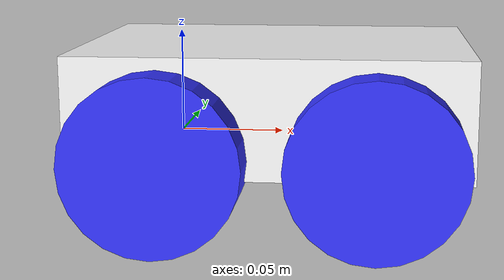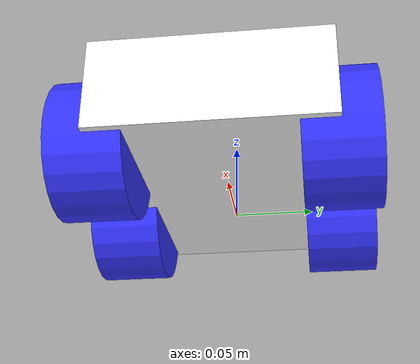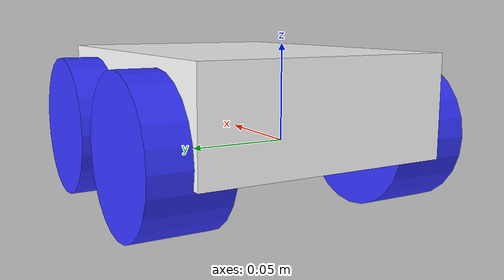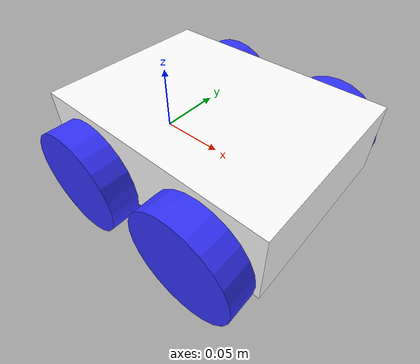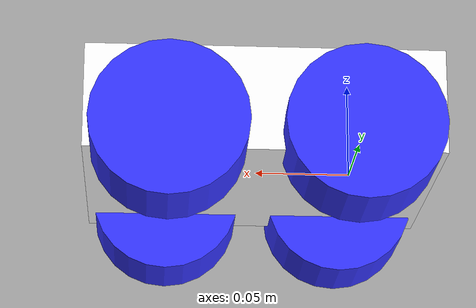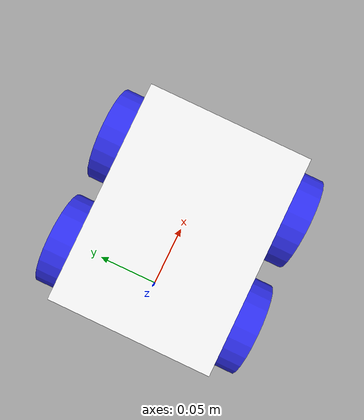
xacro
<?xml version="1.0" ?>
<robot name="basic_mobile_bot" xmlns:xacro="http://ros.org/wiki/xacro">

    <xacro:include filename="inertial_macros.xacro"/>

    <!-- ****************** ROBOT CONSTANTS *******************************  -->
    <!-- Define the size of the robot's main chassis in meters -->

    <!-- Define the shape of the robot's two back wheels in meters -->

    <!-- x-axis points forward, y-axis points to left, z-axis points upwards -->
    <!-- Define the gap between the wheel and chassis along y-axis in meters -->

    <!-- Position the wheels along the z-axis -->

    <!-- Position the wheels along the x-axis -->

    <!-- Position the caster wheel along the x-axis -->

    <!-- Color -->
    <material name="white">
        <color rgba="1 1 1 1" />
    </material>

    <material name="orange">
        <color rgba="1 0.3 0.1 1"/>
    </material>

    <material name="blue">
        <color rgba="0.2 0.2 1 1"/>
    </material>

    <material name="black">
        <color rgba="0 0 0 1"/>
    </material>

    <material name="red">
        <color rgba="1 0 0 1"/>
    </material>

    <!-- BASE LINK *********************************************************  -->
    <!-- Define the center of the main robot chassis projected on the ground -->
    <link name="base_link">
    </link>

    <!-- CHASSIS ***********************************************************  -->
    <joint name="chassis_joint" type="fixed">
        <parent link="base_link"/>
        <child link="chassis" />
        <origin xyz="-0.043 0 0"/>
    </joint>

    <link name="chassis">
        <visual>
            <origin xyz="0.0915 0 0.0181"/>
            <geometry>
                <box size="0.183 0.136 0.0548"/>
            </geometry>
            <material name="white"/>
        </visual>

        <collision>
            <origin xyz="0.0915 0 0.0181"/>
            <geometry>
                <box size="0.183 0.136 0.0548"/>
            </geometry>
        </collision>

        <xacro:inertial_box mass="0.7" x="0.183" y="0.136" z="0.0548">
            <origin xyz="0.0915 0 0.0181" rpy="0 0 0"/>
        </xacro:inertial_box>
    </link>

    <!-- DRIVE WHEELS *****************************************************  -->
    <!-- LEFT FRONT WHEEL -->
    <joint name="left_front_wheel_joint" type="continuous">
        <parent link="base_link"/>
        <child link="left_front_wheel"/>
        <origin xyz="0.097 0.068 0" rpy="-${pi/2} 0 0"/>
        <axis xyz="0 0 1"/>
    </joint>

    <link name="left_front_wheel">
        <visual>
            <origin xyz="0 0 0"/>
            <geometry>
                <cylinder radius="0.04" length="0.0425"/>
            </geometry>
            <material name="blue"/>
        </visual>

        <collision>
            <origin xyz="0 0 0"/>
            <geometry>
                <cylinder radius="0.04" length="0.0425"/>
            </geometry>
        </collision>

        <xacro:inertial_cylinder mass="0.04" radius="0.04" length="0.0425">
            <origin xyz="0 0 0" rpy="0 0 0"/>
        </xacro:inertial_cylinder>
    </link>

    <!-- RIGHT FRONT WHEEL -->
    <joint name="right_front_wheel_joint" type="continuous">
        <parent link="base_link"/>
        <child link="right_front_wheel"/>
        <origin xyz="0.097 -0.068 0" rpy="${pi/2} 0 0"/>
        <axis xyz="0 0 -1"/>
    </joint>

    <link name="right_front_wheel">
        <visual>
            <origin xyz="0 0 0"/>
            <geometry>
                <cylinder radius="0.04" length="0.0425"/>
            </geometry>
            <material name="blue"/>
        </visual>

        <collision>
            <origin xyz="0 0 0"/>
            <geometry>
                <cylinder radius="0.04" length="0.0425"/>
            </geometry>
        </collision>

        <xacro:inertial_cylinder mass="0.04" radius="0.04" length="0.0425">
            <origin xyz="0 0 0" rpy="0 0 0"/>
        </xacro:inertial_cylinder>
    </link>

    <!-- LEFT REAR WHEEL -->
    <joint name="left_rear_wheel_joint" type="continuous">
        <parent link="base_link"/>
        <child link="left_rear_wheel"/>
        <origin xyz="0 0.068 0" rpy="-${pi/2} 0 0"/>
        <axis xyz="0 0 1"/>
    </joint>

    <link name="left_rear_wheel">
        <visual>
            <origin xyz="0 0 0"/>
            <geometry>
                <cylinder radius="0.04" length="0.0425"/>
            </geometry>
            <material name="blue"/>
        </visual>

        <collision>
            <origin xyz="0 0 0"/>
            <geometry>
                <cylinder radius="0.04" length="0.0425"/>
            </geometry>
        </collision>

        <xacro:inertial_cylinder mass="0.04" radius="0.04" length="0.0425">
            <origin xyz="0 0 0" rpy="0 0 0"/>
        </xacro:inertial_cylinder>
    </link>

    <!-- RIGHT REAR WHEEL -->
    <joint name="right_rear_wheel_joint" type="continuous">
        <parent link="base_link"/>
        <child link="right_rear_wheel"/>
        <origin xyz="0 -0.068 0" rpy="${pi/2} 0 0"/>
        <axis xyz="0 0 -1"/>
    </joint>

    <link name="right_rear_wheel">
        <visual>
            <origin xyz="0 0 0"/>
            <geometry>
                <cylinder radius="0.04" length="0.0425"/>
            </geometry>
            <material name="blue"/>
        </visual>

        <collision>
            <origin xyz="0 0 0"/>
            <geometry>
                <cylinder radius="0.04" length="0.0425"/>
            </geometry>
        </collision>

        <xacro:inertial_cylinder mass="0.04" radius="0.04" length="0.0425">
            <origin xyz="0 0 0" rpy="0 0 0"/>
        </xacro:inertial_cylinder>
    </link>

    <!-- *********************** IMU SETUP *********************************  -->
    <!-- Each sensor must be attached to a link.                              -->

    <!-- *********************** GPS SETUP **********************************  -->

</robot>

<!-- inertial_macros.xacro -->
<robot xmlns:xacro="http://www.ros.org/wiki/xacro" >

    <!-- Specify some standard inertial calculations https://en.wikipedia.org/wiki/List_of_moments_of_inertia -->
    <!-- These make use of xacro's mathematical functionality -->

    <!-- Define intertial property macros  -->
    <xacro:macro name="inertial_box" params="mass x y z *origin">
        <inertial>
            <xacro:insert_block name="origin"/>
            <mass value="${mass}" />
            <inertia ixx="${(1/12) * mass * (y*y+z*z)}" ixy="0.0" ixz="0.0"
                    iyy="${(1/12) * mass * (x*x+z*z)}" iyz="0.0"
                    izz="${(1/12) * mass * (x*x+y*y)}" />
        </inertial>
    </xacro:macro>

    <xacro:macro name="inertial_cylinder" params="mass radius length *origin">
        <inertial>
            <xacro:insert_block name="origin"/>
            <mass value="${mass}" />
            <inertia ixx="${(1/12) * mass * (3*radius*radius + length*length)}" ixy="0.0" ixz="0.0"
                    iyy="${(1/12) * mass * (3*radius*radius + length*length)}" iyz="0.0"
                    izz="${(1/2) * mass * (radius*radius)}" />
        </inertial>
    </xacro:macro>

</robot>
